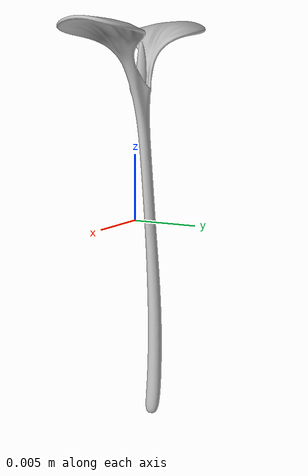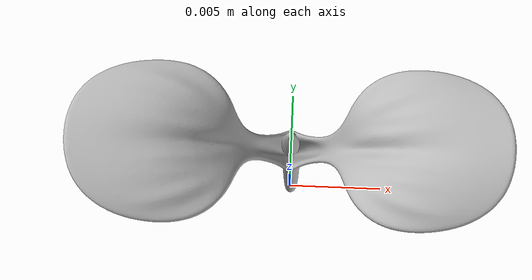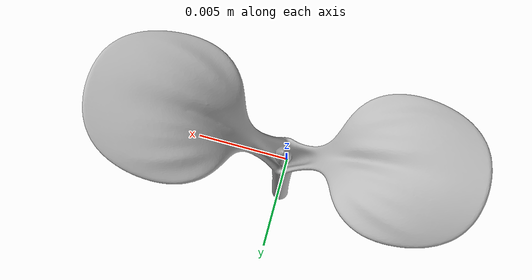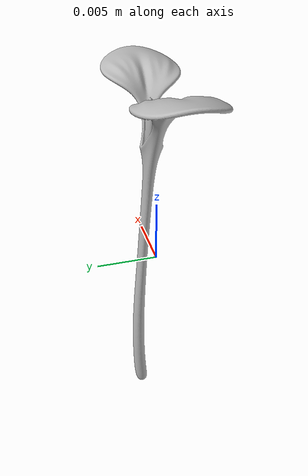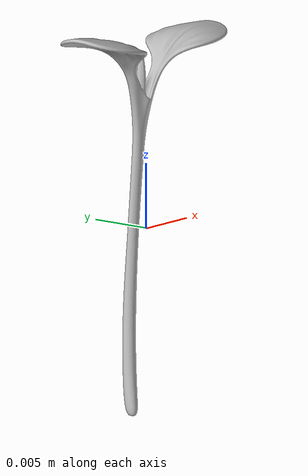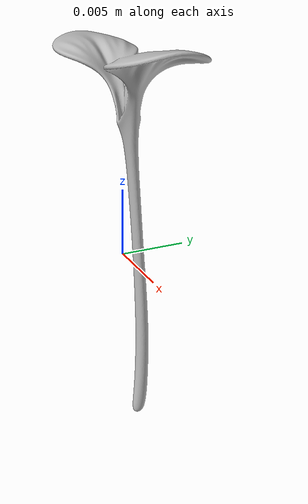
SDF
<?xml version="1.0"?>
<sdf version="1.6">
  <model name="weed3">
    <static>true</static>
    <link name="link">
      <visual name="visual">
        <geometry>
          <mesh>
            <uri>model://weed3/weed3.dae</uri>
          </mesh>
        </geometry>
      </visual>
    </link>
  </model>
</sdf>
